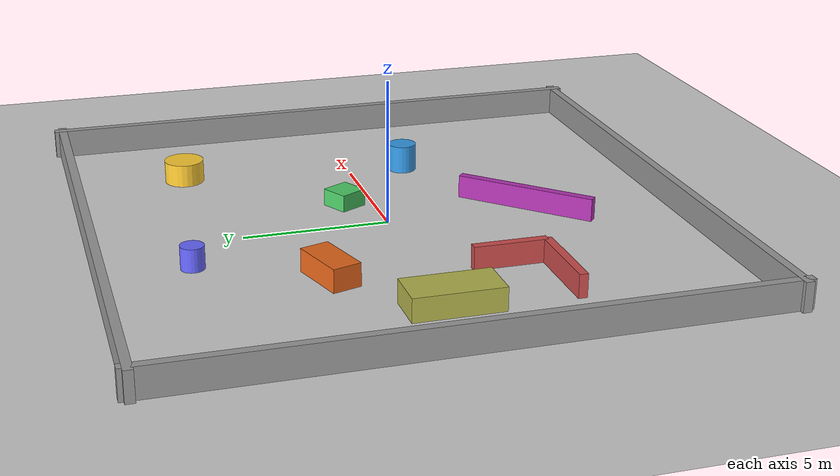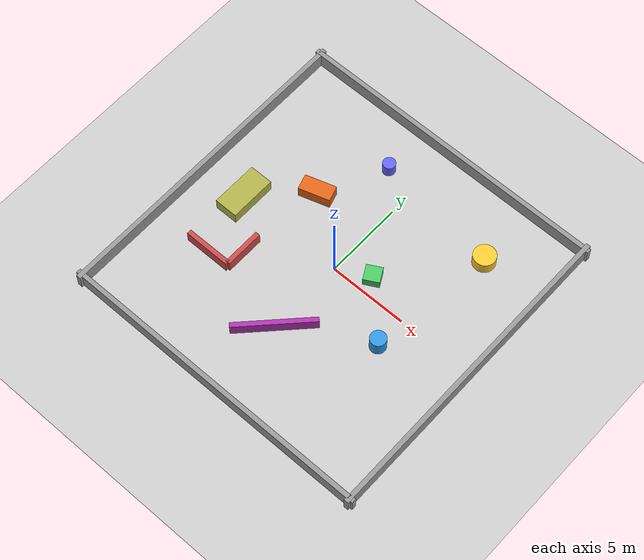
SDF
<?xml version="1.0" ?>
<sdf version="1.6">
  <world name="obstacle_world">

    <!-- ======================== ENVIRONMENT ======================== -->
    <include>
      <uri>model://ground_plane</uri>
    </include>

    <include>
      <uri>model://sun</uri>
    </include>

    <!-- Physics tuning for stable simulation -->
    <physics type="ode">
      <max_step_size>0.001</max_step_size>
      <real_time_factor>1</real_time_factor>
      <real_time_update_rate>1000</real_time_update_rate>
    </physics>

    <!-- ======================== BOUNDARY WALLS (20x20) ======================== -->

    <!-- North Wall -->
    <model name="wall_north">
      <static>true</static>
      <link name="link">
        <collision name="collision">
          <geometry><box><size>20.6 0.3 1.0</size></box></geometry>
        </collision>
        <visual name="visual">
          <geometry><box><size>20.6 0.3 1.0</size></box></geometry>
          <material>
            <ambient>0.4 0.4 0.4 1</ambient>
            <diffuse>0.6 0.6 0.6 1</diffuse>
          </material>
        </visual>
      </link>
      <pose>0 10 0.5 0 0 0</pose>
    </model>

    <!-- South Wall -->
    <model name="wall_south">
      <static>true</static>
      <link name="link">
        <collision name="collision">
          <geometry><box><size>20.6 0.3 1.0</size></box></geometry>
        </collision>
        <visual name="visual">
          <geometry><box><size>20.6 0.3 1.0</size></box></geometry>
          <material>
            <ambient>0.4 0.4 0.4 1</ambient>
            <diffuse>0.6 0.6 0.6 1</diffuse>
          </material>
        </visual>
      </link>
      <pose>0 -10 0.5 0 0 0</pose>
    </model>

    <!-- East Wall -->
    <model name="wall_east">
      <static>true</static>
      <link name="link">
        <collision name="collision">
          <geometry><box><size>0.3 20.6 1.0</size></box></geometry>
        </collision>
        <visual name="visual">
          <geometry><box><size>0.3 20.6 1.0</size></box></geometry>
          <material>
            <ambient>0.4 0.4 0.4 1</ambient>
            <diffuse>0.6 0.6 0.6 1</diffuse>
          </material>
        </visual>
      </link>
      <pose>10 0 0.5 0 0 0</pose>
    </model>

    <!-- West Wall -->
    <model name="wall_west">
      <static>true</static>
      <link name="link">
        <collision name="collision">
          <geometry><box><size>0.3 20.6 1.0</size></box></geometry>
        </collision>
        <visual name="visual">
          <geometry><box><size>0.3 20.6 1.0</size></box></geometry>
          <material>
            <ambient>0.4 0.4 0.4 1</ambient>
            <diffuse>0.6 0.6 0.6 1</diffuse>
          </material>
        </visual>
      </link>
      <pose>-10 0 0.5 0 0 0</pose>
    </model>

    <!-- ======================== INTERNAL OBSTACLES ======================== -->

    <!-- Obstacle 1: Large box (center-left) -->
    <model name="obstacle_box_1">
      <static>true</static>
      <link name="link">
        <collision name="collision">
          <geometry><box><size>2.0 1.0 0.8</size></box></geometry>
        </collision>
        <visual name="visual">
          <geometry><box><size>2.0 1.0 0.8</size></box></geometry>
          <material>
            <ambient>0.7 0.3 0.1 1</ambient>
            <diffuse>0.9 0.4 0.1 1</diffuse>
          </material>
        </visual>
      </link>
      <pose>-4 3 0.4 0 0 0.3</pose>
    </model>

    <!-- Obstacle 2: Tall cylinder (right side) -->
    <model name="obstacle_cyl_1">
      <static>true</static>
      <link name="link">
        <collision name="collision">
          <geometry><cylinder><radius>0.5</radius><length>1.0</length></cylinder></geometry>
        </collision>
        <visual name="visual">
          <geometry><cylinder><radius>0.5</radius><length>1.0</length></cylinder></geometry>
          <material>
            <ambient>0.1 0.5 0.7 1</ambient>
            <diffuse>0.2 0.6 0.9 1</diffuse>
          </material>
        </visual>
      </link>
      <pose>5 -2 0.5 0 0 0</pose>
    </model>

    <!-- Obstacle 3: Long wall-like box (creates corridor) -->
    <model name="obstacle_box_2">
      <static>true</static>
      <link name="link">
        <collision name="collision">
          <geometry><box><size>5.0 0.3 0.8</size></box></geometry>
        </collision>
        <visual name="visual">
          <geometry><box><size>5.0 0.3 0.8</size></box></geometry>
          <material>
            <ambient>0.5 0.1 0.5 1</ambient>
            <diffuse>0.7 0.2 0.7 1</diffuse>
          </material>
        </visual>
      </link>
      <pose>0 -5 0.4 0 0 0.8</pose>
    </model>

    <!-- Obstacle 4: Small box (near center) -->
    <model name="obstacle_box_3">
      <static>true</static>
      <link name="link">
        <collision name="collision">
          <geometry><box><size>1.0 1.0 0.6</size></box></geometry>
        </collision>
        <visual name="visual">
          <geometry><box><size>1.0 1.0 0.6</size></box></geometry>
          <material>
            <ambient>0.2 0.7 0.3 1</ambient>
            <diffuse>0.3 0.8 0.4 1</diffuse>
          </material>
        </visual>
      </link>
      <pose>2 1 0.3 0 0 0.5</pose>
    </model>

    <!-- Obstacle 5: Cylinder (upper-right) -->
    <model name="obstacle_cyl_2">
      <static>true</static>
      <link name="link">
        <collision name="collision">
          <geometry><cylinder><radius>0.7</radius><length>0.8</length></cylinder></geometry>
        </collision>
        <visual name="visual">
          <geometry><cylinder><radius>0.7</radius><length>0.8</length></cylinder></geometry>
          <material>
            <ambient>0.8 0.6 0.1 1</ambient>
            <diffuse>1.0 0.8 0.2 1</diffuse>
          </material>
        </visual>
      </link>
      <pose>6 6 0.4 0 0 0</pose>
    </model>

    <!-- Obstacle 6: L-shaped barrier (two boxes) -->
    <model name="obstacle_box_4">
      <static>true</static>
      <link name="link">
        <collision name="collision">
          <geometry><box><size>3.0 0.3 0.8</size></box></geometry>
        </collision>
        <visual name="visual">
          <geometry><box><size>3.0 0.3 0.8</size></box></geometry>
          <material>
            <ambient>0.6 0.2 0.2 1</ambient>
            <diffuse>0.8 0.3 0.3 1</diffuse>
          </material>
        </visual>
      </link>
      <pose>-6 -4 0.4 0 0 0</pose>
    </model>

    <model name="obstacle_box_5">
      <static>true</static>
      <link name="link">
        <collision name="collision">
          <geometry><box><size>0.3 2.5 0.8</size></box></geometry>
        </collision>
        <visual name="visual">
          <geometry><box><size>0.3 2.5 0.8</size></box></geometry>
          <material>
            <ambient>0.6 0.2 0.2 1</ambient>
            <diffuse>0.8 0.3 0.3 1</diffuse>
          </material>
        </visual>
      </link>
      <pose>-4.5 -2.75 0.4 0 0 0</pose>
    </model>

    <!-- Obstacle 7: Cylinder (lower-left) -->
    <model name="obstacle_cyl_3">
      <static>true</static>
      <link name="link">
        <collision name="collision">
          <geometry><cylinder><radius>0.4</radius><length>0.8</length></cylinder></geometry>
        </collision>
        <visual name="visual">
          <geometry><cylinder><radius>0.4</radius><length>0.8</length></cylinder></geometry>
          <material>
            <ambient>0.3 0.3 0.8 1</ambient>
            <diffuse>0.4 0.4 1.0 1</diffuse>
          </material>
        </visual>
      </link>
      <pose>-2 7 0.4 0 0 0</pose>
    </model>

    <!-- Obstacle 8: Wide box (upper area, creates bottleneck) -->
    <model name="obstacle_box_6">
      <static>true</static>
      <link name="link">
        <collision name="collision">
          <geometry><box><size>1.5 3.0 0.8</size></box></geometry>
        </collision>
        <visual name="visual">
          <geometry><box><size>1.5 3.0 0.8</size></box></geometry>
          <material>
            <ambient>0.5 0.5 0.2 1</ambient>
            <diffuse>0.7 0.7 0.3 1</diffuse>
          </material>
        </visual>
      </link>
      <pose>-7 0 0.4 0 0 0</pose>
    </model>

  </world>
</sdf>
